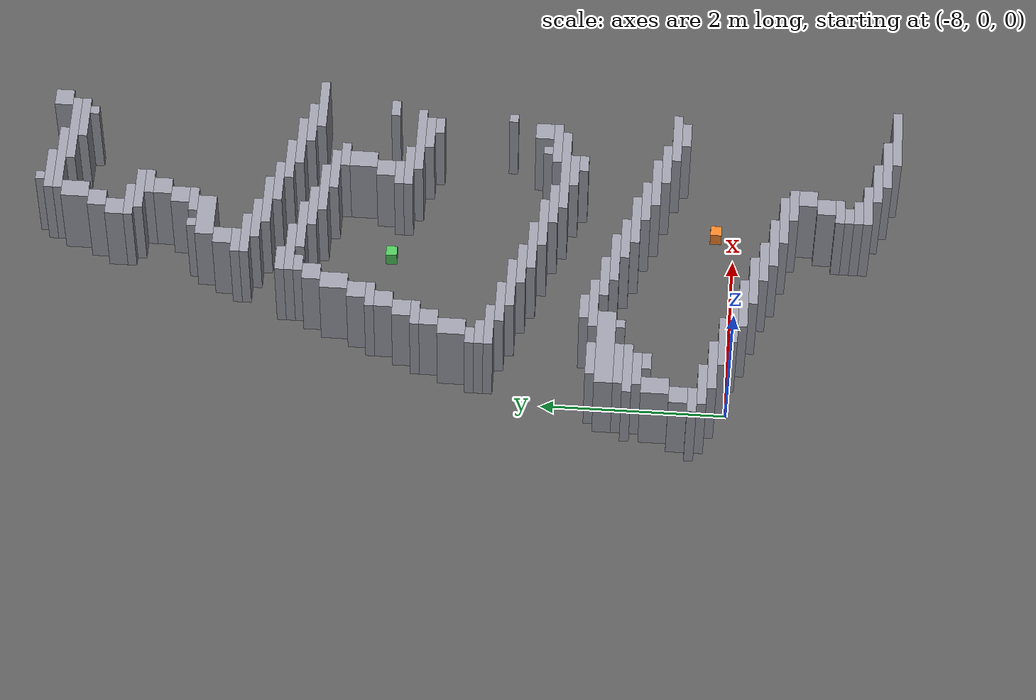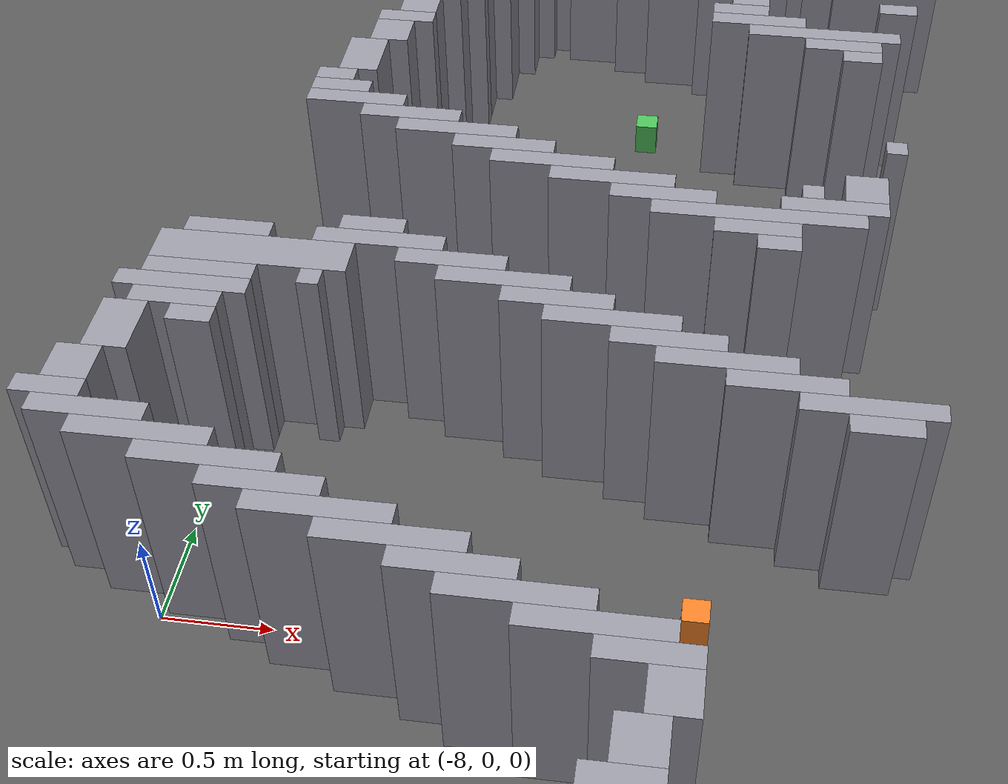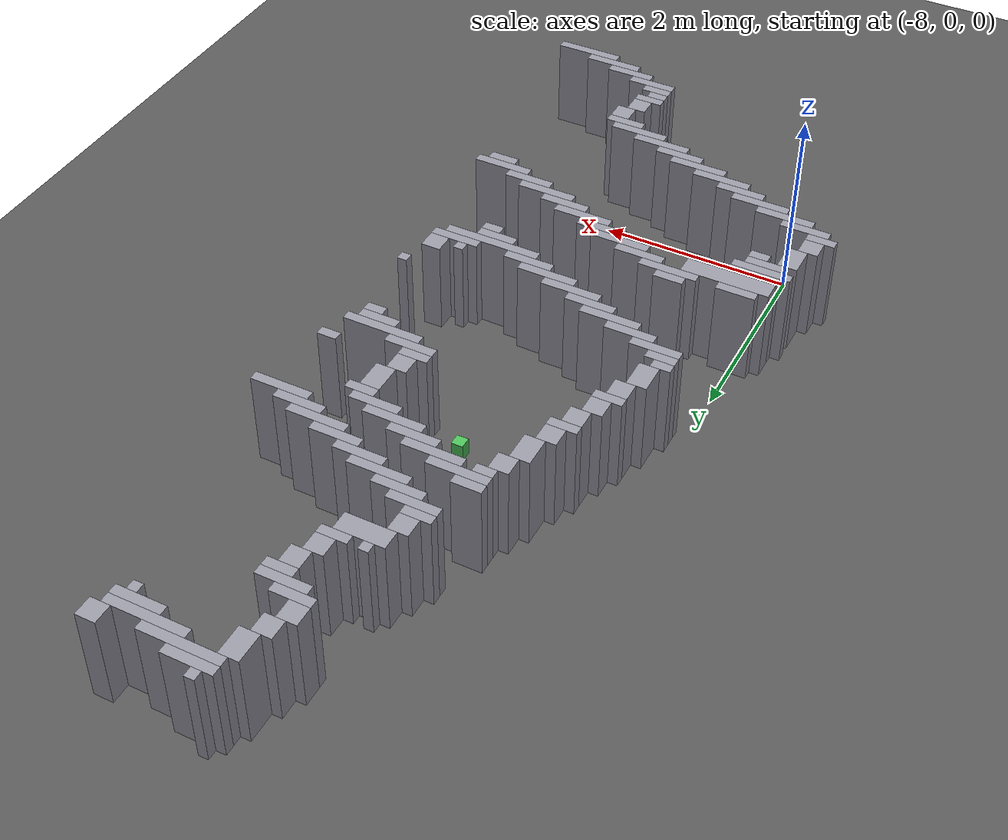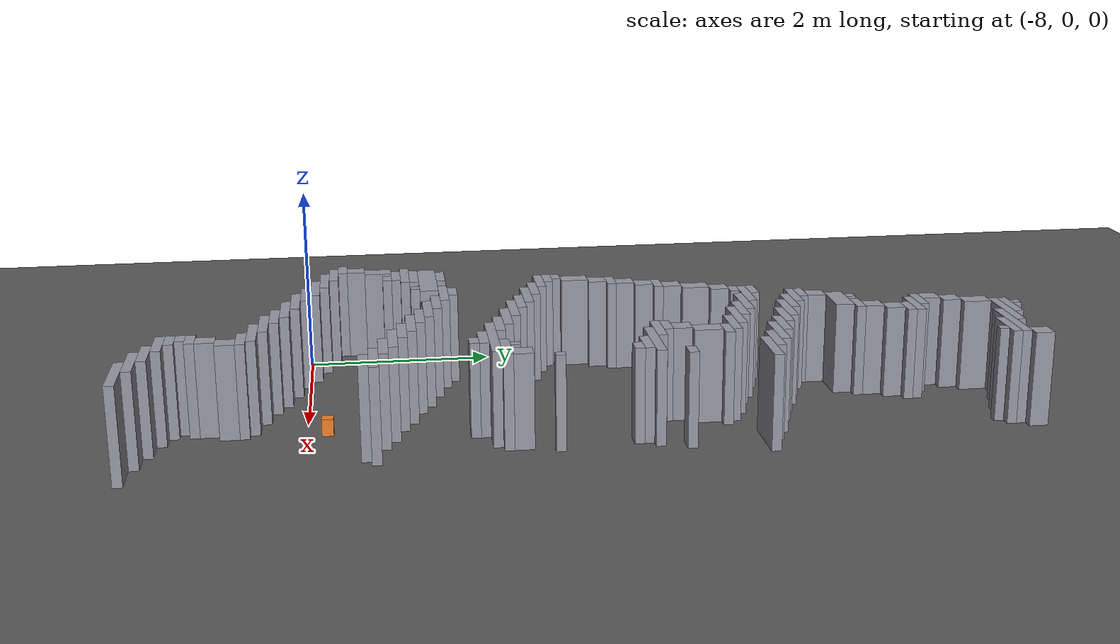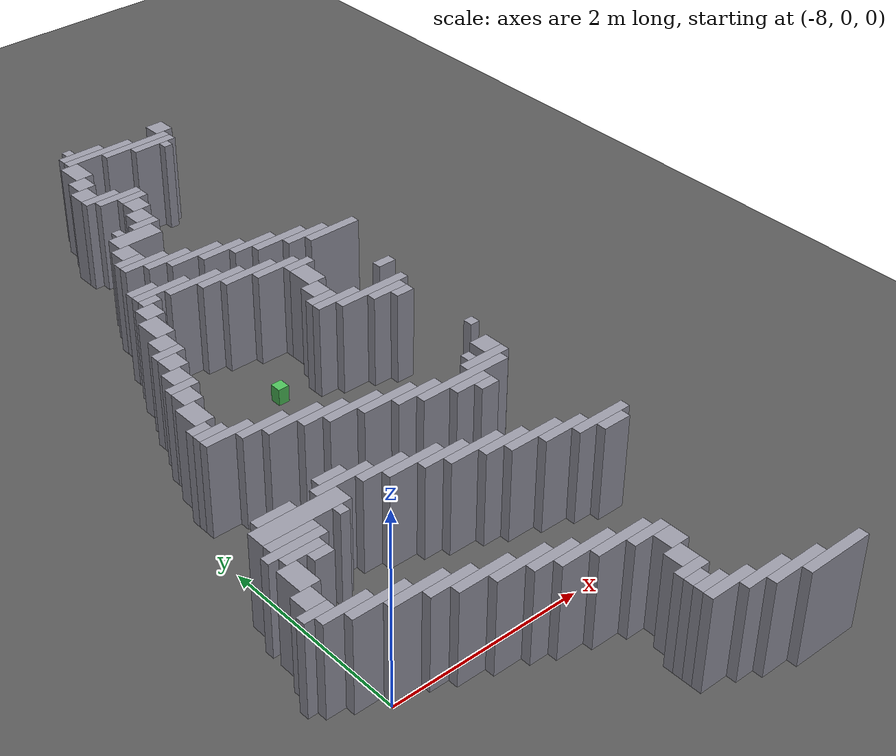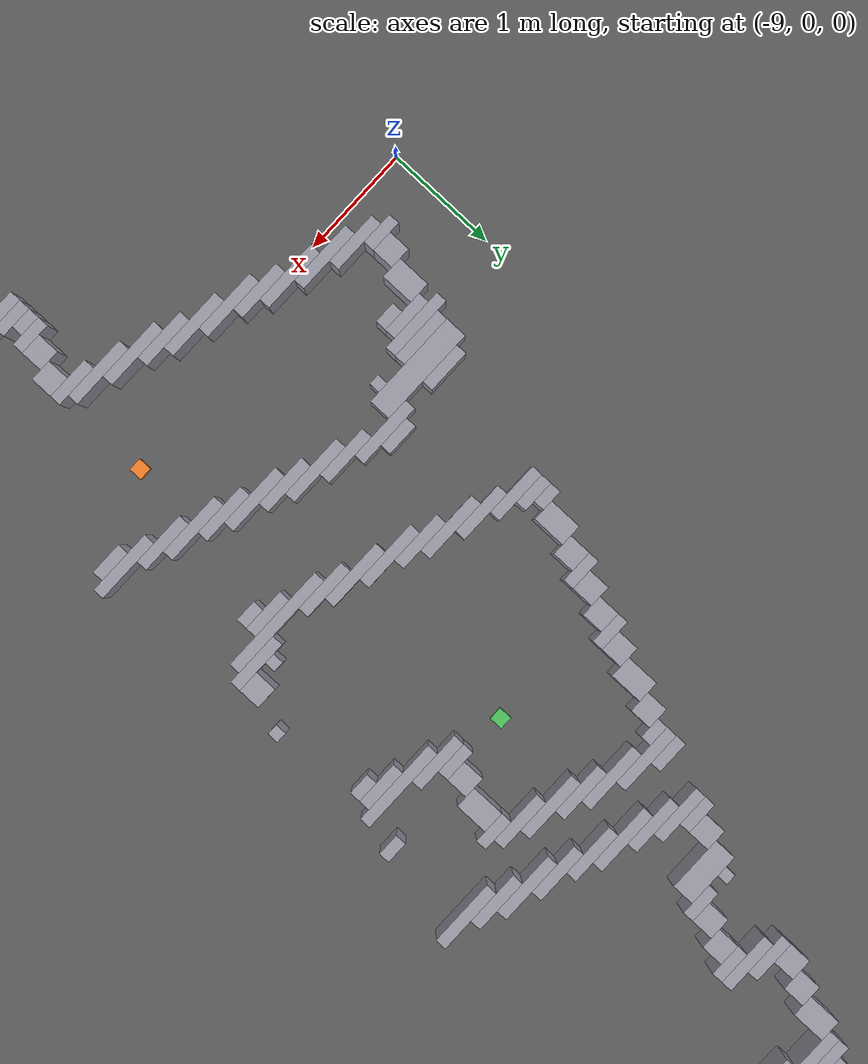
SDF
<sdf version="1.8">
 <world name="dimi">
  <model name="ground">
   <static>true</static>
   <link name="ground_link">
    <collision name="c"><geometry><plane><normal>0 0 1</normal><size>60 60</size></plane></geometry></collision>
    <visual name="v">
     <geometry><plane><normal>0 0 1</normal><size>60 60</size></plane></geometry>
     <material><ambient>0.3 0.3 0.3 1</ambient><diffuse>0.35 0.35 0.35 1</diffuse></material>
    </visual>
   </link>
  </model>
  <model name="walls">
   <static>true</static>
   <link name="wall_1">
    <pose>-6.0230 7.5800 0.5000 0 0 0</pose>
    <collision name="c"><geometry><box><size>0.1000 0.1000 1.0000</size></box></geometry></collision>
    <visual name="v">
     <geometry><box><size>0.1000 0.1000 1.0000</size></box></geometry>
     <material><ambient>0.5 0.5 0.55 1</ambient><diffuse>0.6 0.6 0.65 1</diffuse></material>
    </visual>
   </link>
   <link name="wall_3">
    <pose>-5.9230 7.4800 0.5000 0 0 0</pose>
    <collision name="c"><geometry><box><size>0.5000 0.1000 1.0000</size></box></geometry></collision>
    <visual name="v">
     <geometry><box><size>0.5000 0.1000 1.0000</size></box></geometry>
     <material><ambient>0.5 0.5 0.55 1</ambient><diffuse>0.6 0.6 0.65 1</diffuse></material>
    </visual>
   </link>
   <link name="wall_4">
    <pose>-4.9730 7.4300 0.5000 0 0 0</pose>
    <collision name="c"><geometry><box><size>0.2000 0.2000 1.0000</size></box></geometry></collision>
    <visual name="v">
     <geometry><box><size>0.2000 0.2000 1.0000</size></box></geometry>
     <material><ambient>0.5 0.5 0.55 1</ambient><diffuse>0.6 0.6 0.65 1</diffuse></material>
    </visual>
   </link>
   <link name="wall_6">
    <pose>-5.7730 7.3800 0.5000 0 0 0</pose>
    <collision name="c"><geometry><box><size>0.8000 0.1000 1.0000</size></box></geometry></collision>
    <visual name="v">
     <geometry><box><size>0.8000 0.1000 1.0000</size></box></geometry>
     <material><ambient>0.5 0.5 0.55 1</ambient><diffuse>0.6 0.6 0.65 1</diffuse></material>
    </visual>
   </link>
   <link name="wall_8">
    <pose>-6.1730 7.1800 0.5000 0 0 0</pose>
    <collision name="c"><geometry><box><size>0.2000 0.3000 1.0000</size></box></geometry></collision>
    <visual name="v">
     <geometry><box><size>0.2000 0.3000 1.0000</size></box></geometry>
     <material><ambient>0.5 0.5 0.55 1</ambient><diffuse>0.6 0.6 0.65 1</diffuse></material>
    </visual>
   </link>
   <link name="wall_9">
    <pose>-5.3730 7.2800 0.5000 0 0 0</pose>
    <collision name="c"><geometry><box><size>0.8000 0.1000 1.0000</size></box></geometry></collision>
    <visual name="v">
     <geometry><box><size>0.8000 0.1000 1.0000</size></box></geometry>
     <material><ambient>0.5 0.5 0.55 1</ambient><diffuse>0.6 0.6 0.65 1</diffuse></material>
    </visual>
   </link>
   <link name="wall_11">
    <pose>-5.2230 7.1800 0.5000 0 0 0</pose>
    <collision name="c"><geometry><box><size>0.5000 0.1000 1.0000</size></box></geometry></collision>
    <visual name="v">
     <geometry><box><size>0.5000 0.1000 1.0000</size></box></geometry>
     <material><ambient>0.5 0.5 0.55 1</ambient><diffuse>0.6 0.6 0.65 1</diffuse></material>
    </visual>
   </link>
   <link name="wall_13">
    <pose>-5.1230 7.0800 0.5000 0 0 0</pose>
    <collision name="c"><geometry><box><size>0.1000 0.1000 1.0000</size></box></geometry></collision>
    <visual name="v">
     <geometry><box><size>0.1000 0.1000 1.0000</size></box></geometry>
     <material><ambient>0.5 0.5 0.55 1</ambient><diffuse>0.6 0.6 0.65 1</diffuse></material>
    </visual>
   </link>
   <link name="wall_15">
    <pose>-6.2730 6.9300 0.5000 0 0 0</pose>
    <collision name="c"><geometry><box><size>0.2000 0.2000 1.0000</size></box></geometry></collision>
    <visual name="v">
     <geometry><box><size>0.2000 0.2000 1.0000</size></box></geometry>
     <material><ambient>0.5 0.5 0.55 1</ambient><diffuse>0.6 0.6 0.65 1</diffuse></material>
    </visual>
   </link>
   <link name="wall_18">
    <pose>-6.3730 6.7300 0.5000 0 0 0</pose>
    <collision name="c"><geometry><box><size>0.2000 0.2000 1.0000</size></box></geometry></collision>
    <visual name="v">
     <geometry><box><size>0.2000 0.2000 1.0000</size></box></geometry>
     <material><ambient>0.5 0.5 0.55 1</ambient><diffuse>0.6 0.6 0.65 1</diffuse></material>
    </visual>
   </link>
   <link name="wall_21">
    <pose>-6.2730 6.5800 0.5000 0 0 0</pose>
    <collision name="c"><geometry><box><size>0.4000 0.1000 1.0000</size></box></geometry></collision>
    <visual name="v">
     <geometry><box><size>0.4000 0.1000 1.0000</size></box></geometry>
     <material><ambient>0.5 0.5 0.55 1</ambient><diffuse>0.6 0.6 0.65 1</diffuse></material>
    </visual>
   </link>
   <link name="wall_23">
    <pose>-6.1230 6.4800 0.5000 0 0 0</pose>
    <collision name="c"><geometry><box><size>0.5000 0.1000 1.0000</size></box></geometry></collision>
    <visual name="v">
     <geometry><box><size>0.5000 0.1000 1.0000</size></box></geometry>
     <material><ambient>0.5 0.5 0.55 1</ambient><diffuse>0.6 0.6 0.65 1</diffuse></material>
    </visual>
   </link>
   <link name="wall_25">
    <pose>-6.0230 6.3800 0.5000 0 0 0</pose>
    <collision name="c"><geometry><box><size>0.3000 0.1000 1.0000</size></box></geometry></collision>
    <visual name="v">
     <geometry><box><size>0.3000 0.1000 1.0000</size></box></geometry>
     <material><ambient>0.5 0.5 0.55 1</ambient><diffuse>0.6 0.6 0.65 1</diffuse></material>
    </visual>
   </link>
   <link name="wall_27">
    <pose>-6.0730 6.2300 0.5000 0 0 0</pose>
    <collision name="c"><geometry><box><size>0.2000 0.2000 1.0000</size></box></geometry></collision>
    <visual name="v">
     <geometry><box><size>0.2000 0.2000 1.0000</size></box></geometry>
     <material><ambient>0.5 0.5 0.55 1</ambient><diffuse>0.6 0.6 0.65 1</diffuse></material>
    </visual>
   </link>
   <link name="wall_29">
    <pose>-6.1730 6.0300 0.5000 0 0 0</pose>
    <collision name="c"><geometry><box><size>0.2000 0.2000 1.0000</size></box></geometry></collision>
    <visual name="v">
     <geometry><box><size>0.2000 0.2000 1.0000</size></box></geometry>
     <material><ambient>0.5 0.5 0.55 1</ambient><diffuse>0.6 0.6 0.65 1</diffuse></material>
    </visual>
   </link>
   <link name="wall_33">
    <pose>-6.5230 5.8800 0.5000 0 0 0</pose>
    <collision name="c"><geometry><box><size>0.1000 0.1000 1.0000</size></box></geometry></collision>
    <visual name="v">
     <geometry><box><size>0.1000 0.1000 1.0000</size></box></geometry>
     <material><ambient>0.5 0.5 0.55 1</ambient><diffuse>0.6 0.6 0.65 1</diffuse></material>
    </visual>
   </link>
   <link name="wall_34">
    <pose>-6.2230 5.8800 0.5000 0 0 0</pose>
    <collision name="c"><geometry><box><size>0.3000 0.1000 1.0000</size></box></geometry></collision>
    <visual name="v">
     <geometry><box><size>0.3000 0.1000 1.0000</size></box></geometry>
     <material><ambient>0.5 0.5 0.55 1</ambient><diffuse>0.6 0.6 0.65 1</diffuse></material>
    </visual>
   </link>
   <link name="wall_39">
    <pose>-6.4230 5.7300 0.5000 0 0 0</pose>
    <collision name="c"><geometry><box><size>0.5000 0.2000 1.0000</size></box></geometry></collision>
    <visual name="v">
     <geometry><box><size>0.5000 0.2000 1.0000</size></box></geometry>
     <material><ambient>0.5 0.5 0.55 1</ambient><diffuse>0.6 0.6 0.65 1</diffuse></material>
    </visual>
   </link>
   <link name="wall_46">
    <pose>-6.6730 5.5300 0.5000 0 0 0</pose>
    <collision name="c"><geometry><box><size>0.2000 0.2000 1.0000</size></box></geometry></collision>
    <visual name="v">
     <geometry><box><size>0.2000 0.2000 1.0000</size></box></geometry>
     <material><ambient>0.5 0.5 0.55 1</ambient><diffuse>0.6 0.6 0.65 1</diffuse></material>
    </visual>
   </link>
   <link name="wall_54">
    <pose>-6.7230 5.3800 0.5000 0 0 0</pose>
    <collision name="c"><geometry><box><size>0.3000 0.1000 1.0000</size></box></geometry></collision>
    <visual name="v">
     <geometry><box><size>0.3000 0.1000 1.0000</size></box></geometry>
     <material><ambient>0.5 0.5 0.55 1</ambient><diffuse>0.6 0.6 0.65 1</diffuse></material>
    </visual>
   </link>
   <link name="wall_58">
    <pose>-6.6230 5.2800 0.5000 0 0 0</pose>
    <collision name="c"><geometry><box><size>0.5000 0.1000 1.0000</size></box></geometry></collision>
    <visual name="v">
     <geometry><box><size>0.5000 0.1000 1.0000</size></box></geometry>
     <material><ambient>0.5 0.5 0.55 1</ambient><diffuse>0.6 0.6 0.65 1</diffuse></material>
    </visual>
   </link>
   <link name="wall_61">
    <pose>-6.4230 5.1800 0.5000 0 0 0</pose>
    <collision name="c"><geometry><box><size>0.5000 0.1000 1.0000</size></box></geometry></collision>
    <visual name="v">
     <geometry><box><size>0.5000 0.1000 1.0000</size></box></geometry>
     <material><ambient>0.5 0.5 0.55 1</ambient><diffuse>0.6 0.6 0.65 1</diffuse></material>
    </visual>
   </link>
   <link name="wall_65">
    <pose>-6.1730 5.0800 0.5000 0 0 0</pose>
    <collision name="c"><geometry><box><size>0.6000 0.1000 1.0000</size></box></geometry></collision>
    <visual name="v">
     <geometry><box><size>0.6000 0.1000 1.0000</size></box></geometry>
     <material><ambient>0.5 0.5 0.55 1</ambient><diffuse>0.6 0.6 0.65 1</diffuse></material>
    </visual>
   </link>
   <link name="wall_69">
    <pose>-5.9230 4.9800 0.5000 0 0 0</pose>
    <collision name="c"><geometry><box><size>0.5000 0.1000 1.0000</size></box></geometry></collision>
    <visual name="v">
     <geometry><box><size>0.5000 0.1000 1.0000</size></box></geometry>
     <material><ambient>0.5 0.5 0.55 1</ambient><diffuse>0.6 0.6 0.65 1</diffuse></material>
    </visual>
   </link>
   <link name="wall_73">
    <pose>-6.9230 4.8800 0.5000 0 0 0</pose>
    <collision name="c"><geometry><box><size>0.3000 0.1000 1.0000</size></box></geometry></collision>
    <visual name="v">
     <geometry><box><size>0.3000 0.1000 1.0000</size></box></geometry>
     <material><ambient>0.5 0.5 0.55 1</ambient><diffuse>0.6 0.6 0.65 1</diffuse></material>
    </visual>
   </link>
   <link name="wall_74">
    <pose>-5.6230 4.8800 0.5000 0 0 0</pose>
    <collision name="c"><geometry><box><size>0.5000 0.1000 1.0000</size></box></geometry></collision>
    <visual name="v">
     <geometry><box><size>0.5000 0.1000 1.0000</size></box></geometry>
     <material><ambient>0.5 0.5 0.55 1</ambient><diffuse>0.6 0.6 0.65 1</diffuse></material>
    </visual>
   </link>
   <link name="wall_78">
    <pose>-6.7730 4.7800 0.5000 0 0 0</pose>
    <collision name="c"><geometry><box><size>0.6000 0.1000 1.0000</size></box></geometry></collision>
    <visual name="v">
     <geometry><box><size>0.6000 0.1000 1.0000</size></box></geometry>
     <material><ambient>0.5 0.5 0.55 1</ambient><diffuse>0.6 0.6 0.65 1</diffuse></material>
    </visual>
   </link>
   <link name="wall_79">
    <pose>-5.3730 4.7800 0.5000 0 0 0</pose>
    <collision name="c"><geometry><box><size>0.6000 0.1000 1.0000</size></box></geometry></collision>
    <visual name="v">
     <geometry><box><size>0.6000 0.1000 1.0000</size></box></geometry>
     <material><ambient>0.5 0.5 0.55 1</ambient><diffuse>0.6 0.6 0.65 1</diffuse></material>
    </visual>
   </link>
   <link name="wall_83">
    <pose>-6.9730 4.6800 0.5000 0 0 0</pose>
    <collision name="c"><geometry><box><size>0.2000 0.1000 1.0000</size></box></geometry></collision>
    <visual name="v">
     <geometry><box><size>0.2000 0.1000 1.0000</size></box></geometry>
     <material><ambient>0.5 0.5 0.55 1</ambient><diffuse>0.6 0.6 0.65 1</diffuse></material>
    </visual>
   </link>
   <link name="wall_84">
    <pose>-6.4730 4.6800 0.5000 0 0 0</pose>
    <collision name="c"><geometry><box><size>0.6000 0.1000 1.0000</size></box></geometry></collision>
    <visual name="v">
     <geometry><box><size>0.6000 0.1000 1.0000</size></box></geometry>
     <material><ambient>0.5 0.5 0.55 1</ambient><diffuse>0.6 0.6 0.65 1</diffuse></material>
    </visual>
   </link>
   <link name="wall_85">
    <pose>-5.1230 4.6800 0.5000 0 0 0</pose>
    <collision name="c"><geometry><box><size>0.5000 0.1000 1.0000</size></box></geometry></collision>
    <visual name="v">
     <geometry><box><size>0.5000 0.1000 1.0000</size></box></geometry>
     <material><ambient>0.5 0.5 0.55 1</ambient><diffuse>0.6 0.6 0.65 1</diffuse></material>
    </visual>
   </link>
   <link name="wall_89">
    <pose>-7.0730 4.5300 0.5000 0 0 0</pose>
    <collision name="c"><geometry><box><size>0.2000 0.2000 1.0000</size></box></geometry></collision>
    <visual name="v">
     <geometry><box><size>0.2000 0.2000 1.0000</size></box></geometry>
     <material><ambient>0.5 0.5 0.55 1</ambient><diffuse>0.6 0.6 0.65 1</diffuse></material>
    </visual>
   </link>
   <link name="wall_90">
    <pose>-6.2230 4.5800 0.5000 0 0 0</pose>
    <collision name="c"><geometry><box><size>0.5000 0.1000 1.0000</size></box></geometry></collision>
    <visual name="v">
     <geometry><box><size>0.5000 0.1000 1.0000</size></box></geometry>
     <material><ambient>0.5 0.5 0.55 1</ambient><diffuse>0.6 0.6 0.65 1</diffuse></material>
    </visual>
   </link>
   <link name="wall_91">
    <pose>-4.8730 4.5800 0.5000 0 0 0</pose>
    <collision name="c"><geometry><box><size>0.6000 0.1000 1.0000</size></box></geometry></collision>
    <visual name="v">
     <geometry><box><size>0.6000 0.1000 1.0000</size></box></geometry>
     <material><ambient>0.5 0.5 0.55 1</ambient><diffuse>0.6 0.6 0.65 1</diffuse></material>
    </visual>
   </link>
   <link name="wall_94">
    <pose>-5.9730 4.4800 0.5000 0 0 0</pose>
    <collision name="c"><geometry><box><size>0.6000 0.1000 1.0000</size></box></geometry></collision>
    <visual name="v">
     <geometry><box><size>0.6000 0.1000 1.0000</size></box></geometry>
     <material><ambient>0.5 0.5 0.55 1</ambient><diffuse>0.6 0.6 0.65 1</diffuse></material>
    </visual>
   </link>
   <link name="wall_99">
    <pose>-7.1730 4.2800 0.5000 0 0 0</pose>
    <collision name="c"><geometry><box><size>0.2000 0.3000 1.0000</size></box></geometry></collision>
    <visual name="v">
     <geometry><box><size>0.2000 0.3000 1.0000</size></box></geometry>
     <material><ambient>0.5 0.5 0.55 1</ambient><diffuse>0.6 0.6 0.65 1</diffuse></material>
    </visual>
   </link>
   <link name="wall_100">
    <pose>-5.7230 4.3800 0.5000 0 0 0</pose>
    <collision name="c"><geometry><box><size>0.5000 0.1000 1.0000</size></box></geometry></collision>
    <visual name="v">
     <geometry><box><size>0.5000 0.1000 1.0000</size></box></geometry>
     <material><ambient>0.5 0.5 0.55 1</ambient><diffuse>0.6 0.6 0.65 1</diffuse></material>
    </visual>
   </link>
   <link name="wall_104">
    <pose>-5.5230 4.2800 0.5000 0 0 0</pose>
    <collision name="c"><geometry><box><size>0.3000 0.1000 1.0000</size></box></geometry></collision>
    <visual name="v">
     <geometry><box><size>0.3000 0.1000 1.0000</size></box></geometry>
     <material><ambient>0.5 0.5 0.55 1</ambient><diffuse>0.6 0.6 0.65 1</diffuse></material>
    </visual>
   </link>
   <link name="wall_107">
    <pose>-5.5730 4.0800 0.5000 0 0 0</pose>
    <collision name="c"><geometry><box><size>0.2000 0.3000 1.0000</size></box></geometry></collision>
    <visual name="v">
     <geometry><box><size>0.2000 0.3000 1.0000</size></box></geometry>
     <material><ambient>0.5 0.5 0.55 1</ambient><diffuse>0.6 0.6 0.65 1</diffuse></material>
    </visual>
   </link>
   <link name="wall_111">
    <pose>-7.2730 4.0300 0.5000 0 0 0</pose>
    <collision name="c"><geometry><box><size>0.2000 0.2000 1.0000</size></box></geometry></collision>
    <visual name="v">
     <geometry><box><size>0.2000 0.2000 1.0000</size></box></geometry>
     <material><ambient>0.5 0.5 0.55 1</ambient><diffuse>0.6 0.6 0.65 1</diffuse></material>
    </visual>
   </link>
   <link name="wall_116">
    <pose>-7.3230 3.8800 0.5000 0 0 0</pose>
    <collision name="c"><geometry><box><size>0.3000 0.1000 1.0000</size></box></geometry></collision>
    <visual name="v">
     <geometry><box><size>0.3000 0.1000 1.0000</size></box></geometry>
     <material><ambient>0.5 0.5 0.55 1</ambient><diffuse>0.6 0.6 0.65 1</diffuse></material>
    </visual>
   </link>
   <link name="wall_117">
    <pose>-5.6730 3.8300 0.5000 0 0 0</pose>
    <collision name="c"><geometry><box><size>0.2000 0.2000 1.0000</size></box></geometry></collision>
    <visual name="v">
     <geometry><box><size>0.2000 0.2000 1.0000</size></box></geometry>
     <material><ambient>0.5 0.5 0.55 1</ambient><diffuse>0.6 0.6 0.65 1</diffuse></material>
    </visual>
   </link>
   <link name="wall_121">
    <pose>-7.3730 3.7300 0.5000 0 0 0</pose>
    <collision name="c"><geometry><box><size>0.2000 0.2000 1.0000</size></box></geometry></collision>
    <visual name="v">
     <geometry><box><size>0.2000 0.2000 1.0000</size></box></geometry>
     <material><ambient>0.5 0.5 0.55 1</ambient><diffuse>0.6 0.6 0.65 1</diffuse></material>
    </visual>
   </link>
   <link name="wall_122">
    <pose>-4.8730 3.7800 0.5000 0 0 0</pose>
    <collision name="c"><geometry><box><size>0.2000 0.1000 1.0000</size></box></geometry></collision>
    <visual name="v">
     <geometry><box><size>0.2000 0.1000 1.0000</size></box></geometry>
     <material><ambient>0.5 0.5 0.55 1</ambient><diffuse>0.6 0.6 0.65 1</diffuse></material>
    </visual>
   </link>
   <link name="wall_123">
    <pose>-5.7230 3.6800 0.5000 0 0 0</pose>
    <collision name="c"><geometry><box><size>0.3000 0.1000 1.0000</size></box></geometry></collision>
    <visual name="v">
     <geometry><box><size>0.3000 0.1000 1.0000</size></box></geometry>
     <material><ambient>0.5 0.5 0.55 1</ambient><diffuse>0.6 0.6 0.65 1</diffuse></material>
    </visual>
   </link>
   <link name="wall_127">
    <pose>-7.4730 3.5300 0.5000 0 0 0</pose>
    <collision name="c"><geometry><box><size>0.2000 0.2000 1.0000</size></box></geometry></collision>
    <visual name="v">
     <geometry><box><size>0.2000 0.2000 1.0000</size></box></geometry>
     <material><ambient>0.5 0.5 0.55 1</ambient><diffuse>0.6 0.6 0.65 1</diffuse></material>
    </visual>
   </link>
   <link name="wall_128">
    <pose>-5.6230 3.5800 0.5000 0 0 0</pose>
    <collision name="c"><geometry><box><size>0.5000 0.1000 1.0000</size></box></geometry></collision>
    <visual name="v">
     <geometry><box><size>0.5000 0.1000 1.0000</size></box></geometry>
     <material><ambient>0.5 0.5 0.55 1</ambient><diffuse>0.6 0.6 0.65 1</diffuse></material>
    </visual>
   </link>
   <link name="wall_131">
    <pose>-5.2730 3.4800 0.5000 0 0 0</pose>
    <collision name="c"><geometry><box><size>0.8000 0.1000 1.0000</size></box></geometry></collision>
    <visual name="v">
     <geometry><box><size>0.8000 0.1000 1.0000</size></box></geometry>
     <material><ambient>0.5 0.5 0.55 1</ambient><diffuse>0.6 0.6 0.65 1</diffuse></material>
    </visual>
   </link>
   <link name="wall_135">
    <pose>-7.5230 3.3800 0.5000 0 0 0</pose>
    <collision name="c"><geometry><box><size>0.3000 0.1000 1.0000</size></box></geometry></collision>
    <visual name="v">
     <geometry><box><size>0.3000 0.1000 1.0000</size></box></geometry>
     <material><ambient>0.5 0.5 0.55 1</ambient><diffuse>0.6 0.6 0.65 1</diffuse></material>
    </visual>
   </link>
   <link name="wall_136">
    <pose>-5.1730 3.3800 0.5000 0 0 0</pose>
    <collision name="c"><geometry><box><size>0.4000 0.1000 1.0000</size></box></geometry></collision>
    <visual name="v">
     <geometry><box><size>0.4000 0.1000 1.0000</size></box></geometry>
     <material><ambient>0.5 0.5 0.55 1</ambient><diffuse>0.6 0.6 0.65 1</diffuse></material>
    </visual>
   </link>
   <link name="wall_141">
    <pose>-7.5730 3.2300 0.5000 0 0 0</pose>
    <collision name="c"><geometry><box><size>0.2000 0.2000 1.0000</size></box></geometry></collision>
    <visual name="v">
     <geometry><box><size>0.2000 0.2000 1.0000</size></box></geometry>
     <material><ambient>0.5 0.5 0.55 1</ambient><diffuse>0.6 0.6 0.65 1</diffuse></material>
    </visual>
   </link>
   <link name="wall_142">
    <pose>-5.0730 3.2800 0.5000 0 0 0</pose>
    <collision name="c"><geometry><box><size>0.2000 0.1000 1.0000</size></box></geometry></collision>
    <visual name="v">
     <geometry><box><size>0.2000 0.1000 1.0000</size></box></geometry>
     <material><ambient>0.5 0.5 0.55 1</ambient><diffuse>0.6 0.6 0.65 1</diffuse></material>
    </visual>
   </link>
   <link name="wall_150">
    <pose>-7.6730 2.9800 0.5000 0 0 0</pose>
    <collision name="c"><geometry><box><size>0.2000 0.3000 1.0000</size></box></geometry></collision>
    <visual name="v">
     <geometry><box><size>0.2000 0.3000 1.0000</size></box></geometry>
     <material><ambient>0.5 0.5 0.55 1</ambient><diffuse>0.6 0.6 0.65 1</diffuse></material>
    </visual>
   </link>
   <link name="wall_159">
    <pose>-7.7730 2.7800 0.5000 0 0 0</pose>
    <collision name="c"><geometry><box><size>0.2000 0.1000 1.0000</size></box></geometry></collision>
    <visual name="v">
     <geometry><box><size>0.2000 0.1000 1.0000</size></box></geometry>
     <material><ambient>0.5 0.5 0.55 1</ambient><diffuse>0.6 0.6 0.65 1</diffuse></material>
    </visual>
   </link>
   <link name="wall_162">
    <pose>-7.7230 2.6800 0.5000 0 0 0</pose>
    <collision name="c"><geometry><box><size>0.3000 0.1000 1.0000</size></box></geometry></collision>
    <visual name="v">
     <geometry><box><size>0.3000 0.1000 1.0000</size></box></geometry>
     <material><ambient>0.5 0.5 0.55 1</ambient><diffuse>0.6 0.6 0.65 1</diffuse></material>
    </visual>
   </link>
   <link name="wall_165">
    <pose>-7.6230 2.5800 0.5000 0 0 0</pose>
    <collision name="c"><geometry><box><size>0.5000 0.1000 1.0000</size></box></geometry></collision>
    <visual name="v">
     <geometry><box><size>0.5000 0.1000 1.0000</size></box></geometry>
     <material><ambient>0.5 0.5 0.55 1</ambient><diffuse>0.6 0.6 0.65 1</diffuse></material>
    </visual>
   </link>
   <link name="wall_171">
    <pose>-7.3230 2.4800 0.5000 0 0 0</pose>
    <collision name="c"><geometry><box><size>0.5000 0.1000 1.0000</size></box></geometry></collision>
    <visual name="v">
     <geometry><box><size>0.5000 0.1000 1.0000</size></box></geometry>
     <material><ambient>0.5 0.5 0.55 1</ambient><diffuse>0.6 0.6 0.65 1</diffuse></material>
    </visual>
   </link>
   <link name="wall_172">
    <pose>-4.9230 2.4800 0.5000 0 0 0</pose>
    <collision name="c"><geometry><box><size>0.1000 0.1000 1.0000</size></box></geometry></collision>
    <visual name="v">
     <geometry><box><size>0.1000 0.1000 1.0000</size></box></geometry>
     <material><ambient>0.5 0.5 0.55 1</ambient><diffuse>0.6 0.6 0.65 1</diffuse></material>
    </visual>
   </link>
   <link name="wall_175">
    <pose>-7.0730 2.3800 0.5000 0 0 0</pose>
    <collision name="c"><geometry><box><size>0.6000 0.1000 1.0000</size></box></geometry></collision>
    <visual name="v">
     <geometry><box><size>0.6000 0.1000 1.0000</size></box></geometry>
     <material><ambient>0.5 0.5 0.55 1</ambient><diffuse>0.6 0.6 0.65 1</diffuse></material>
    </visual>
   </link>
   <link name="wall_181">
    <pose>-6.8230 2.2800 0.5000 0 0 0</pose>
    <collision name="c"><geometry><box><size>0.5000 0.1000 1.0000</size></box></geometry></collision>
    <visual name="v">
     <geometry><box><size>0.5000 0.1000 1.0000</size></box></geometry>
     <material><ambient>0.5 0.5 0.55 1</ambient><diffuse>0.6 0.6 0.65 1</diffuse></material>
    </visual>
   </link>
   <link name="wall_188">
    <pose>-6.5730 2.1800 0.5000 0 0 0</pose>
    <collision name="c"><geometry><box><size>0.6000 0.1000 1.0000</size></box></geometry></collision>
    <visual name="v">
     <geometry><box><size>0.6000 0.1000 1.0000</size></box></geometry>
     <material><ambient>0.5 0.5 0.55 1</ambient><diffuse>0.6 0.6 0.65 1</diffuse></material>
    </visual>
   </link>
   <link name="wall_189">
    <pose>-5.0730 2.1300 0.5000 0 0 0</pose>
    <collision name="c"><geometry><box><size>0.2000 0.2000 1.0000</size></box></geometry></collision>
    <visual name="v">
     <geometry><box><size>0.2000 0.2000 1.0000</size></box></geometry>
     <material><ambient>0.5 0.5 0.55 1</ambient><diffuse>0.6 0.6 0.65 1</diffuse></material>
    </visual>
   </link>
   <link name="wall_194">
    <pose>-6.2730 2.0800 0.5000 0 0 0</pose>
    <collision name="c"><geometry><box><size>0.6000 0.1000 1.0000</size></box></geometry></collision>
    <visual name="v">
     <geometry><box><size>0.6000 0.1000 1.0000</size></box></geometry>
     <material><ambient>0.5 0.5 0.55 1</ambient><diffuse>0.6 0.6 0.65 1</diffuse></material>
    </visual>
   </link>
   <link name="wall_195">
    <pose>-5.3230 2.0800 0.5000 0 0 0</pose>
    <collision name="c"><geometry><box><size>0.1000 0.1000 1.0000</size></box></geometry></collision>
    <visual name="v">
     <geometry><box><size>0.1000 0.1000 1.0000</size></box></geometry>
     <material><ambient>0.5 0.5 0.55 1</ambient><diffuse>0.6 0.6 0.65 1</diffuse></material>
    </visual>
   </link>
   <link name="wall_201">
    <pose>-6.0230 1.9800 0.5000 0 0 0</pose>
    <collision name="c"><geometry><box><size>0.5000 0.1000 1.0000</size></box></geometry></collision>
    <visual name="v">
     <geometry><box><size>0.5000 0.1000 1.0000</size></box></geometry>
     <material><ambient>0.5 0.5 0.55 1</ambient><diffuse>0.6 0.6 0.65 1</diffuse></material>
    </visual>
   </link>
   <link name="wall_202">
    <pose>-5.2230 1.9800 0.5000 0 0 0</pose>
    <collision name="c"><geometry><box><size>0.5000 0.1000 1.0000</size></box></geometry></collision>
    <visual name="v">
     <geometry><box><size>0.5000 0.1000 1.0000</size></box></geometry>
     <material><ambient>0.5 0.5 0.55 1</ambient><diffuse>0.6 0.6 0.65 1</diffuse></material>
    </visual>
   </link>
   <link name="wall_208">
    <pose>-5.5730 1.8800 0.5000 0 0 0</pose>
    <collision name="c"><geometry><box><size>1.0000 0.1000 1.0000</size></box></geometry></collision>
    <visual name="v">
     <geometry><box><size>1.0000 0.1000 1.0000</size></box></geometry>
     <material><ambient>0.5 0.5 0.55 1</ambient><diffuse>0.6 0.6 0.65 1</diffuse></material>
    </visual>
   </link>
   <link name="wall_214">
    <pose>-5.5730 1.7800 0.5000 0 0 0</pose>
    <collision name="c"><geometry><box><size>0.4000 0.1000 1.0000</size></box></geometry></collision>
    <visual name="v">
     <geometry><box><size>0.4000 0.1000 1.0000</size></box></geometry>
     <material><ambient>0.5 0.5 0.55 1</ambient><diffuse>0.6 0.6 0.65 1</diffuse></material>
    </visual>
   </link>
   <link name="wall_219">
    <pose>-5.4730 1.6800 0.5000 0 0 0</pose>
    <collision name="c"><geometry><box><size>0.2000 0.1000 1.0000</size></box></geometry></collision>
    <visual name="v">
     <geometry><box><size>0.2000 0.1000 1.0000</size></box></geometry>
     <material><ambient>0.5 0.5 0.55 1</ambient><diffuse>0.6 0.6 0.65 1</diffuse></material>
    </visual>
   </link>
   <link name="wall_223">
    <pose>-7.3230 1.5800 0.5000 0 0 0</pose>
    <collision name="c"><geometry><box><size>0.3000 0.1000 1.0000</size></box></geometry></collision>
    <visual name="v">
     <geometry><box><size>0.3000 0.1000 1.0000</size></box></geometry>
     <material><ambient>0.5 0.5 0.55 1</ambient><diffuse>0.6 0.6 0.65 1</diffuse></material>
    </visual>
   </link>
   <link name="wall_226">
    <pose>-7.9730 1.4800 0.5000 0 0 0</pose>
    <collision name="c"><geometry><box><size>0.4000 0.1000 1.0000</size></box></geometry></collision>
    <visual name="v">
     <geometry><box><size>0.4000 0.1000 1.0000</size></box></geometry>
     <material><ambient>0.5 0.5 0.55 1</ambient><diffuse>0.6 0.6 0.65 1</diffuse></material>
    </visual>
   </link>
   <link name="wall_227">
    <pose>-7.2730 1.4800 0.5000 0 0 0</pose>
    <collision name="c"><geometry><box><size>0.6000 0.1000 1.0000</size></box></geometry></collision>
    <visual name="v">
     <geometry><box><size>0.6000 0.1000 1.0000</size></box></geometry>
     <material><ambient>0.5 0.5 0.55 1</ambient><diffuse>0.6 0.6 0.65 1</diffuse></material>
    </visual>
   </link>
   <link name="wall_230">
    <pose>-7.8230 1.3300 0.5000 0 0 0</pose>
    <collision name="c"><geometry><box><size>0.9000 0.2000 1.0000</size></box></geometry></collision>
    <visual name="v">
     <geometry><box><size>0.9000 0.2000 1.0000</size></box></geometry>
     <material><ambient>0.5 0.5 0.55 1</ambient><diffuse>0.6 0.6 0.65 1</diffuse></material>
    </visual>
   </link>
   <link name="wall_231">
    <pose>-6.9230 1.3800 0.5000 0 0 0</pose>
    <collision name="c"><geometry><box><size>0.5000 0.1000 1.0000</size></box></geometry></collision>
    <visual name="v">
     <geometry><box><size>0.5000 0.1000 1.0000</size></box></geometry>
     <material><ambient>0.5 0.5 0.55 1</ambient><diffuse>0.6 0.6 0.65 1</diffuse></material>
    </visual>
   </link>
   <link name="wall_233">
    <pose>-6.6730 1.2800 0.5000 0 0 0</pose>
    <collision name="c"><geometry><box><size>0.6000 0.1000 1.0000</size></box></geometry></collision>
    <visual name="v">
     <geometry><box><size>0.6000 0.1000 1.0000</size></box></geometry>
     <material><ambient>0.5 0.5 0.55 1</ambient><diffuse>0.6 0.6 0.65 1</diffuse></material>
    </visual>
   </link>
   <link name="wall_235">
    <pose>-8.0230 1.1800 0.5000 0 0 0</pose>
    <collision name="c"><geometry><box><size>0.5000 0.1000 1.0000</size></box></geometry></collision>
    <visual name="v">
     <geometry><box><size>0.5000 0.1000 1.0000</size></box></geometry>
     <material><ambient>0.5 0.5 0.55 1</ambient><diffuse>0.6 0.6 0.65 1</diffuse></material>
    </visual>
   </link>
   <link name="wall_236">
    <pose>-7.5230 1.1800 0.5000 0 0 0</pose>
    <collision name="c"><geometry><box><size>0.1000 0.1000 1.0000</size></box></geometry></collision>
    <visual name="v">
     <geometry><box><size>0.1000 0.1000 1.0000</size></box></geometry>
     <material><ambient>0.5 0.5 0.55 1</ambient><diffuse>0.6 0.6 0.65 1</diffuse></material>
    </visual>
   </link>
   <link name="wall_237">
    <pose>-6.4230 1.1800 0.5000 0 0 0</pose>
    <collision name="c"><geometry><box><size>0.5000 0.1000 1.0000</size></box></geometry></collision>
    <visual name="v">
     <geometry><box><size>0.5000 0.1000 1.0000</size></box></geometry>
     <material><ambient>0.5 0.5 0.55 1</ambient><diffuse>0.6 0.6 0.65 1</diffuse></material>
    </visual>
   </link>
   <link name="wall_239">
    <pose>-8.0730 1.0800 0.5000 0 0 0</pose>
    <collision name="c"><geometry><box><size>0.6000 0.1000 1.0000</size></box></geometry></collision>
    <visual name="v">
     <geometry><box><size>0.6000 0.1000 1.0000</size></box></geometry>
     <material><ambient>0.5 0.5 0.55 1</ambient><diffuse>0.6 0.6 0.65 1</diffuse></material>
    </visual>
   </link>
   <link name="wall_240">
    <pose>-6.1730 1.0800 0.5000 0 0 0</pose>
    <collision name="c"><geometry><box><size>0.6000 0.1000 1.0000</size></box></geometry></collision>
    <visual name="v">
     <geometry><box><size>0.6000 0.1000 1.0000</size></box></geometry>
     <material><ambient>0.5 0.5 0.55 1</ambient><diffuse>0.6 0.6 0.65 1</diffuse></material>
    </visual>
   </link>
   <link name="wall_242">
    <pose>-8.0730 0.9800 0.5000 0 0 0</pose>
    <collision name="c"><geometry><box><size>0.4000 0.1000 1.0000</size></box></geometry></collision>
    <visual name="v">
     <geometry><box><size>0.4000 0.1000 1.0000</size></box></geometry>
     <material><ambient>0.5 0.5 0.55 1</ambient><diffuse>0.6 0.6 0.65 1</diffuse></material>
    </visual>
   </link>
   <link name="wall_243">
    <pose>-5.9230 0.9800 0.5000 0 0 0</pose>
    <collision name="c"><geometry><box><size>0.5000 0.1000 1.0000</size></box></geometry></collision>
    <visual name="v">
     <geometry><box><size>0.5000 0.1000 1.0000</size></box></geometry>
     <material><ambient>0.5 0.5 0.55 1</ambient><diffuse>0.6 0.6 0.65 1</diffuse></material>
    </visual>
   </link>
   <link name="wall_245">
    <pose>-8.2730 0.7800 0.5000 0 0 0</pose>
    <collision name="c"><geometry><box><size>0.2000 0.3000 1.0000</size></box></geometry></collision>
    <visual name="v">
     <geometry><box><size>0.2000 0.3000 1.0000</size></box></geometry>
     <material><ambient>0.5 0.5 0.55 1</ambient><diffuse>0.6 0.6 0.65 1</diffuse></material>
    </visual>
   </link>
   <link name="wall_246">
    <pose>-7.9730 0.8800 0.5000 0 0 0</pose>
    <collision name="c"><geometry><box><size>0.2000 0.1000 1.0000</size></box></geometry></collision>
    <visual name="v">
     <geometry><box><size>0.2000 0.1000 1.0000</size></box></geometry>
     <material><ambient>0.5 0.5 0.55 1</ambient><diffuse>0.6 0.6 0.65 1</diffuse></material>
    </visual>
   </link>
   <link name="wall_247">
    <pose>-5.6730 0.8800 0.5000 0 0 0</pose>
    <collision name="c"><geometry><box><size>0.6000 0.1000 1.0000</size></box></geometry></collision>
    <visual name="v">
     <geometry><box><size>0.6000 0.1000 1.0000</size></box></geometry>
     <material><ambient>0.5 0.5 0.55 1</ambient><diffuse>0.6 0.6 0.65 1</diffuse></material>
    </visual>
   </link>
   <link name="wall_249">
    <pose>-5.4230 0.7800 0.5000 0 0 0</pose>
    <collision name="c"><geometry><box><size>0.5000 0.1000 1.0000</size></box></geometry></collision>
    <visual name="v">
     <geometry><box><size>0.5000 0.1000 1.0000</size></box></geometry>
     <material><ambient>0.5 0.5 0.55 1</ambient><diffuse>0.6 0.6 0.65 1</diffuse></material>
    </visual>
   </link>
   <link name="wall_251">
    <pose>-5.0730 0.6800 0.5000 0 0 0</pose>
    <collision name="c"><geometry><box><size>0.6000 0.1000 1.0000</size></box></geometry></collision>
    <visual name="v">
     <geometry><box><size>0.6000 0.1000 1.0000</size></box></geometry>
     <material><ambient>0.5 0.5 0.55 1</ambient><diffuse>0.6 0.6 0.65 1</diffuse></material>
    </visual>
   </link>
   <link name="wall_252">
    <pose>-8.3730 0.5300 0.5000 0 0 0</pose>
    <collision name="c"><geometry><box><size>0.2000 0.2000 1.0000</size></box></geometry></collision>
    <visual name="v">
     <geometry><box><size>0.2000 0.2000 1.0000</size></box></geometry>
     <material><ambient>0.5 0.5 0.55 1</ambient><diffuse>0.6 0.6 0.65 1</diffuse></material>
    </visual>
   </link>
   <link name="wall_253">
    <pose>-5.0230 0.5800 0.5000 0 0 0</pose>
    <collision name="c"><geometry><box><size>0.3000 0.1000 1.0000</size></box></geometry></collision>
    <visual name="v">
     <geometry><box><size>0.3000 0.1000 1.0000</size></box></geometry>
     <material><ambient>0.5 0.5 0.55 1</ambient><diffuse>0.6 0.6 0.65 1</diffuse></material>
    </visual>
   </link>
   <link name="wall_258">
    <pose>-8.4230 0.3800 0.5000 0 0 0</pose>
    <collision name="c"><geometry><box><size>0.3000 0.1000 1.0000</size></box></geometry></collision>
    <visual name="v">
     <geometry><box><size>0.3000 0.1000 1.0000</size></box></geometry>
     <material><ambient>0.5 0.5 0.55 1</ambient><diffuse>0.6 0.6 0.65 1</diffuse></material>
    </visual>
   </link>
   <link name="wall_260">
    <pose>-8.2230 0.2800 0.5000 0 0 0</pose>
    <collision name="c"><geometry><box><size>0.5000 0.1000 1.0000</size></box></geometry></collision>
    <visual name="v">
     <geometry><box><size>0.5000 0.1000 1.0000</size></box></geometry>
     <material><ambient>0.5 0.5 0.55 1</ambient><diffuse>0.6 0.6 0.65 1</diffuse></material>
    </visual>
   </link>
   <link name="wall_263">
    <pose>-7.9730 0.1800 0.5000 0 0 0</pose>
    <collision name="c"><geometry><box><size>0.6000 0.1000 1.0000</size></box></geometry></collision>
    <visual name="v">
     <geometry><box><size>0.6000 0.1000 1.0000</size></box></geometry>
     <material><ambient>0.5 0.5 0.55 1</ambient><diffuse>0.6 0.6 0.65 1</diffuse></material>
    </visual>
   </link>
   <link name="wall_265">
    <pose>-7.6730 0.0800 0.5000 0 0 0</pose>
    <collision name="c"><geometry><box><size>0.6000 0.1000 1.0000</size></box></geometry></collision>
    <visual name="v">
     <geometry><box><size>0.6000 0.1000 1.0000</size></box></geometry>
     <material><ambient>0.5 0.5 0.55 1</ambient><diffuse>0.6 0.6 0.65 1</diffuse></material>
    </visual>
   </link>
   <link name="wall_267">
    <pose>-7.4230 -0.0200 0.5000 0 0 0</pose>
    <collision name="c"><geometry><box><size>0.5000 0.1000 1.0000</size></box></geometry></collision>
    <visual name="v">
     <geometry><box><size>0.5000 0.1000 1.0000</size></box></geometry>
     <material><ambient>0.5 0.5 0.55 1</ambient><diffuse>0.6 0.6 0.65 1</diffuse></material>
    </visual>
   </link>
   <link name="wall_269">
    <pose>-7.1730 -0.1200 0.5000 0 0 0</pose>
    <collision name="c"><geometry><box><size>0.6000 0.1000 1.0000</size></box></geometry></collision>
    <visual name="v">
     <geometry><box><size>0.6000 0.1000 1.0000</size></box></geometry>
     <material><ambient>0.5 0.5 0.55 1</ambient><diffuse>0.6 0.6 0.65 1</diffuse></material>
    </visual>
   </link>
   <link name="wall_270">
    <pose>-6.8730 -0.2200 0.5000 0 0 0</pose>
    <collision name="c"><geometry><box><size>0.6000 0.1000 1.0000</size></box></geometry></collision>
    <visual name="v">
     <geometry><box><size>0.6000 0.1000 1.0000</size></box></geometry>
     <material><ambient>0.5 0.5 0.55 1</ambient><diffuse>0.6 0.6 0.65 1</diffuse></material>
    </visual>
   </link>
   <link name="wall_272">
    <pose>-6.6230 -0.3200 0.5000 0 0 0</pose>
    <collision name="c"><geometry><box><size>0.5000 0.1000 1.0000</size></box></geometry></collision>
    <visual name="v">
     <geometry><box><size>0.5000 0.1000 1.0000</size></box></geometry>
     <material><ambient>0.5 0.5 0.55 1</ambient><diffuse>0.6 0.6 0.65 1</diffuse></material>
    </visual>
   </link>
   <link name="wall_275">
    <pose>-6.3730 -0.4200 0.5000 0 0 0</pose>
    <collision name="c"><geometry><box><size>0.6000 0.1000 1.0000</size></box></geometry></collision>
    <visual name="v">
     <geometry><box><size>0.6000 0.1000 1.0000</size></box></geometry>
     <material><ambient>0.5 0.5 0.55 1</ambient><diffuse>0.6 0.6 0.65 1</diffuse></material>
    </visual>
   </link>
   <link name="wall_277">
    <pose>-6.0730 -0.5200 0.5000 0 0 0</pose>
    <collision name="c"><geometry><box><size>0.6000 0.1000 1.0000</size></box></geometry></collision>
    <visual name="v">
     <geometry><box><size>0.6000 0.1000 1.0000</size></box></geometry>
     <material><ambient>0.5 0.5 0.55 1</ambient><diffuse>0.6 0.6 0.65 1</diffuse></material>
    </visual>
   </link>
   <link name="wall_281">
    <pose>-5.8730 -0.6200 0.5000 0 0 0</pose>
    <collision name="c"><geometry><box><size>0.4000 0.1000 1.0000</size></box></geometry></collision>
    <visual name="v">
     <geometry><box><size>0.4000 0.1000 1.0000</size></box></geometry>
     <material><ambient>0.5 0.5 0.55 1</ambient><diffuse>0.6 0.6 0.65 1</diffuse></material>
    </visual>
   </link>
   <link name="wall_283">
    <pose>-5.7730 -0.7700 0.5000 0 0 0</pose>
    <collision name="c"><geometry><box><size>0.2000 0.2000 1.0000</size></box></geometry></collision>
    <visual name="v">
     <geometry><box><size>0.2000 0.2000 1.0000</size></box></geometry>
     <material><ambient>0.5 0.5 0.55 1</ambient><diffuse>0.6 0.6 0.65 1</diffuse></material>
    </visual>
   </link>
   <link name="wall_289">
    <pose>-5.8730 -0.9700 0.5000 0 0 0</pose>
    <collision name="c"><geometry><box><size>0.2000 0.2000 1.0000</size></box></geometry></collision>
    <visual name="v">
     <geometry><box><size>0.2000 0.2000 1.0000</size></box></geometry>
     <material><ambient>0.5 0.5 0.55 1</ambient><diffuse>0.6 0.6 0.65 1</diffuse></material>
    </visual>
   </link>
   <link name="wall_295">
    <pose>-5.9230 -1.1200 0.5000 0 0 0</pose>
    <collision name="c"><geometry><box><size>0.3000 0.1000 1.0000</size></box></geometry></collision>
    <visual name="v">
     <geometry><box><size>0.3000 0.1000 1.0000</size></box></geometry>
     <material><ambient>0.5 0.5 0.55 1</ambient><diffuse>0.6 0.6 0.65 1</diffuse></material>
    </visual>
   </link>
   <link name="wall_297">
    <pose>-5.9730 -1.2200 0.5000 0 0 0</pose>
    <collision name="c"><geometry><box><size>0.2000 0.1000 1.0000</size></box></geometry></collision>
    <visual name="v">
     <geometry><box><size>0.2000 0.1000 1.0000</size></box></geometry>
     <material><ambient>0.5 0.5 0.55 1</ambient><diffuse>0.6 0.6 0.65 1</diffuse></material>
    </visual>
   </link>
   <link name="wall_300">
    <pose>-5.9230 -1.3200 0.5000 0 0 0</pose>
    <collision name="c"><geometry><box><size>0.3000 0.1000 1.0000</size></box></geometry></collision>
    <visual name="v">
     <geometry><box><size>0.3000 0.1000 1.0000</size></box></geometry>
     <material><ambient>0.5 0.5 0.55 1</ambient><diffuse>0.6 0.6 0.65 1</diffuse></material>
    </visual>
   </link>
   <link name="wall_303">
    <pose>-5.8230 -1.4200 0.5000 0 0 0</pose>
    <collision name="c"><geometry><box><size>0.5000 0.1000 1.0000</size></box></geometry></collision>
    <visual name="v">
     <geometry><box><size>0.5000 0.1000 1.0000</size></box></geometry>
     <material><ambient>0.5 0.5 0.55 1</ambient><diffuse>0.6 0.6 0.65 1</diffuse></material>
    </visual>
   </link>
   <link name="wall_306">
    <pose>-5.5230 -1.5200 0.5000 0 0 0</pose>
    <collision name="c"><geometry><box><size>0.5000 0.1000 1.0000</size></box></geometry></collision>
    <visual name="v">
     <geometry><box><size>0.5000 0.1000 1.0000</size></box></geometry>
     <material><ambient>0.5 0.5 0.55 1</ambient><diffuse>0.6 0.6 0.65 1</diffuse></material>
    </visual>
   </link>
   <link name="wall_310">
    <pose>-5.2730 -1.6200 0.5000 0 0 0</pose>
    <collision name="c"><geometry><box><size>0.6000 0.1000 1.0000</size></box></geometry></collision>
    <visual name="v">
     <geometry><box><size>0.6000 0.1000 1.0000</size></box></geometry>
     <material><ambient>0.5 0.5 0.55 1</ambient><diffuse>0.6 0.6 0.65 1</diffuse></material>
    </visual>
   </link>
   <link name="wall_312">
    <pose>-4.9230 -1.7200 0.5000 0 0 0</pose>
    <collision name="c"><geometry><box><size>0.7000 0.1000 1.0000</size></box></geometry></collision>
    <visual name="v">
     <geometry><box><size>0.7000 0.1000 1.0000</size></box></geometry>
     <material><ambient>0.5 0.5 0.55 1</ambient><diffuse>0.6 0.6 0.65 1</diffuse></material>
    </visual>
   </link>
  </model>
  <model name="remote">
   <static>true</static>
   <pose>-6.2086 3.7410 0.0900 0 0 0</pose>
   <link name="link">
    <collision name="c"><geometry><box><size>0.12 0.12 0.18</size></box></geometry></collision>
    <visual name="v">
     <geometry><box><size>0.12 0.12 0.18</size></box></geometry>
     <material><ambient>0.3 0.75 0.35 1</ambient><diffuse>0.3 0.75 0.35 1</diffuse></material>
    </visual>
   </link>
  </model>
  <model name="keys">
   <static>true</static>
   <pose>-5.7060 0.2006 0.0900 0 0 0</pose>
   <link name="link">
    <collision name="c"><geometry><box><size>0.12 0.12 0.18</size></box></geometry></collision>
    <visual name="v">
     <geometry><box><size>0.12 0.12 0.18</size></box></geometry>
     <material><ambient>0.95 0.5 0.15 1</ambient><diffuse>0.95 0.5 0.15 1</diffuse></material>
    </visual>
   </link>
  </model>
 </world>
</sdf>
